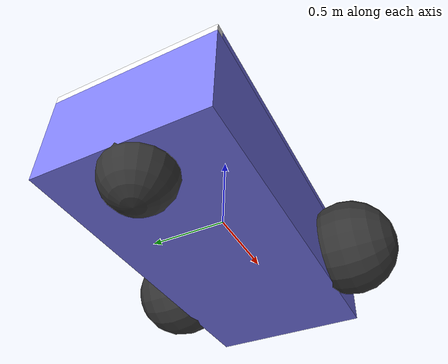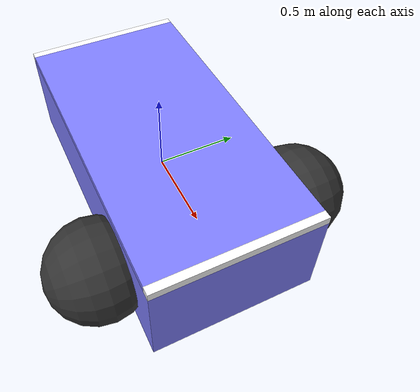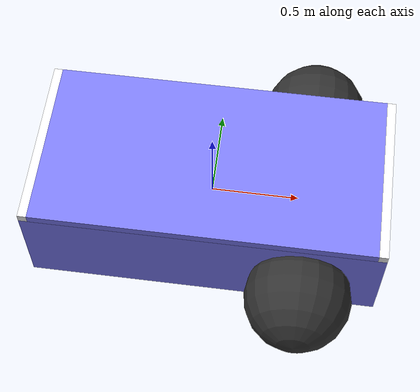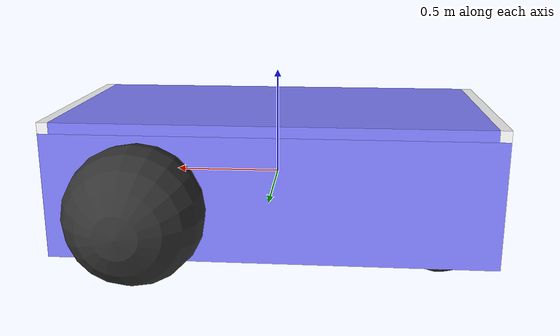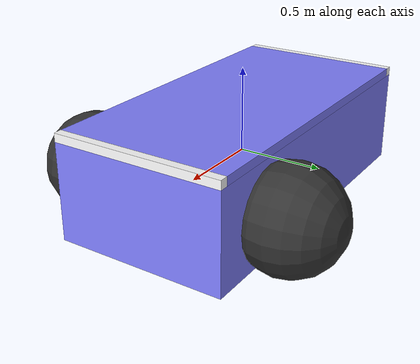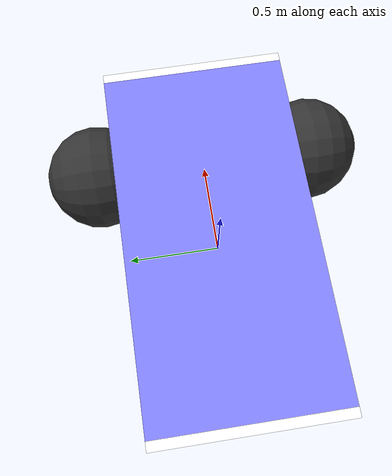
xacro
<?xml version="1.0" ?>
<robot xmlns:xacro="http://www.ros.org/wiki/xacro" name="led_robot">
  <xacro:include filename="$(find gz_led_plugin)/examples/ros/urdf/led_robot.gazebo.xacro" />

  <!-- Base link -->
  <link name="chassis_base">
    <inertial>
      <origin xyz="-0.151427 0 0.175" rpy="0 0 0"/>
      <mass value="1.14395"/>
      <inertia ixx="0.126164" ixy="0" ixz="0" iyy="0.416519" iyz="0" izz="0.481014"/>
    </inertial>
    <visual name="chassis_base_visual">
      <origin xyz="0 0 0" rpy="0 0 0"/>
      <geometry>
        <box size="2.0 1 0.568726"/>
      </geometry>
      <material name="">
        <color rgba="0.5 0.5 1.0 1"/>
      </material>
    </visual>
    <collision name="chassis_base_collision">
      <origin xyz="0 0 0" rpy="0 0 0"/>
      <geometry>
        <box size="2.0 1 0.568726"/>
      </geometry>
    </collision>
  </link>

  <!-- Top link -->
  <link name="chassis_top">
    <inertial>
      <origin xyz="-0.151427 0 0.484363" rpy="0 0 0"/>
      <mass value="1.14395"/>
      <inertia ixx="0.126164" ixy="0" ixz="0" iyy="0.416519" iyz="0" izz="0.481014"/>
    </inertial>
    <visual name="chassis_top_visual">
      <origin xyz="0 0 0" rpy="0 0 0"/>
      <geometry>
        <box size="1.9 1 0.05"/>
      </geometry>
      <material name="">
        <color rgba="0.5 0.5 1.0 1"/>
      </material>
    </visual>
    <collision name="chassis_top_collision">
      <origin xyz="0 0 0" rpy="0 0 0"/>
      <geometry>
        <box size="1.9 1 0.05"/>
      </geometry>
    </collision>
  </link>

  <!-- Front LED -->
  <link name="front_led">
    <inertial>
      <origin xyz="-1.126427 0 0.484363" rpy="0 0 0"/>
      <mass value="0.01"/>
      <inertia ixx="1e-6" ixy="0" ixz="0" iyy="1e-6" iyz="0" izz="1e-6"/>
    </inertial>
    <visual name="front_led_visual">
      <origin xyz="0 0 0" rpy="0 0 0"/>
      <geometry>
        <box size="0.05 1 0.05"/>
      </geometry>
      <material name="">
        <color rgba="1.0 1.0 1.0 1"/>
      </material>
    </visual>
    <collision name="front_led_collision">
      <origin xyz="0 0 0" rpy="0 0 0"/>
      <geometry>
        <box size="0.05 1 0.05"/>
      </geometry>
    </collision>
  </link>

  <!-- Back LED -->
  <link name="back_led">
    <inertial>
      <origin xyz="0.823573 0 0.484363" rpy="0 0 0"/>
      <mass value="0.01"/>
      <inertia ixx="1e-6" ixy="0" ixz="0" iyy="1e-6" iyz="0" izz="1e-6"/>
    </inertial>
    <visual name="back_led_visual">
      <origin xyz="0 0 0" rpy="0 0 0"/>
      <geometry>
        <box size="0.05 1 0.05"/>
      </geometry>
      <material name="">
        <color rgba="1.0 1.0 1.0 1"/>
      </material>
    </visual>
    <collision name="back_led_collision">
      <origin xyz="0 0 0" rpy="0 0 0"/>
      <geometry>
        <box size="0.05 1 0.05"/>
      </geometry>
    </collision>
  </link>

  <!-- Left wheel -->
  <link name="left_wheel">
    <inertial>
      <origin xyz="0.554283 0.625029 -0.025" rpy="-1.5707 0 0"/>
      <mass value="2"/>
      <inertia ixx="0.145833" ixy="0" ixz="0" iyy="0.145833" iyz="0" izz="0.125"/>
    </inertial>
    <visual name="left_wheel_visual">
      <origin xyz="0 0 0" rpy="0 0 0"/>
      <geometry>
        <sphere radius="0.3"/>
      </geometry>
      <material name="">
        <color rgba="0.2 0.2 0.2 1"/>
      </material>
    </visual>
    <collision name="left_wheel_collision">
      <origin xyz="0 0 0" rpy="0 0 0"/>
      <geometry>
        <sphere radius="0.3"/>
      </geometry>
    </collision>
  </link>

  <!-- Right wheel -->
  <link name="right_wheel">
    <inertial>
      <origin xyz="0.554282 -0.625029 -0.025" rpy="-1.5707 0 0"/>
      <mass value="2"/>
      <inertia ixx="0.145833" ixy="0" ixz="0" iyy="0.145833" iyz="0" izz="0.125"/>
    </inertial>
    <visual name="right_wheel_visual">
      <origin xyz="0 0 0" rpy="0 0 0"/>
      <geometry>
        <sphere radius="0.3"/>
      </geometry>
      <material name="">
        <color rgba="0.2 0.2 0.2 1"/>
      </material>
    </visual>
    <collision name="right_wheel_collision">
      <origin xyz="0 0 0" rpy="0 0 0"/>
      <geometry>
        <sphere radius="0.3"/>
      </geometry>
    </collision>
  </link>

  <!-- Caster -->
  <link name="caster">
    <inertial>
      <origin xyz="-0.957138 0 -0.125" rpy="0 0 0"/>
      <mass value="1"/>
      <inertia ixx="0.1" ixy="0" ixz="0" iyy="0.1" iyz="0" izz="0.1"/>
    </inertial>
    <visual name="caster_visual">
      <origin xyz="0 0 0" rpy="0 0 0"/>
      <geometry>
        <sphere radius="0.2"/>
      </geometry>
      <material name="">
        <color rgba="0.2 0.2 0.2 1"/>
      </material>
    </visual>
    <collision name="caster_collision">
      <origin xyz="0 0 0" rpy="0 0 0"/>
      <geometry>
        <sphere radius="0.2"/>
      </geometry>
    </collision>
  </link>

  <!-- Joints -->
  <joint name="left_wheel_joint" type="continuous">
    <parent link="chassis_base"/>
    <child link="left_wheel"/>
    <origin xyz="0.554283 0.625029 -0.025" rpy="-1.5707 0 0"/>
    <axis xyz="0 0 1"/>
  </joint>

  <joint name="right_wheel_joint" type="continuous">
    <parent link="chassis_base"/>
    <child link="right_wheel"/>
    <origin xyz="0.554282 -0.625029 -0.025" rpy="-1.5707 0 0"/>
    <axis xyz="0 0 1"/>
  </joint>

  <joint name="base_to_top_joint" type="fixed">
    <parent link="chassis_base"/>
    <child link="chassis_top"/>
    <origin xyz="0 0 0.309363" rpy="0 0 0"/>
  </joint>

  <joint name="top_to_front_led_joint" type="fixed">
    <parent link="chassis_top"/>
    <child link="front_led"/>
    <origin xyz="-0.975 0 0" rpy="0 0 0"/>
  </joint>

  <joint name="top_to_back_led_joint" type="fixed">
    <parent link="chassis_top"/>
    <child link="back_led"/>
    <origin xyz="0.975 0 0" rpy="0 0 0"/>
  </joint>

  <joint name="caster_wheel_joint" type="fixed">
    <parent link="chassis_base"/>
    <child link="caster"/>
    <origin xyz="-0.805711 0 -0.3" rpy="0 0 0"/>
  </joint>
</robot>
